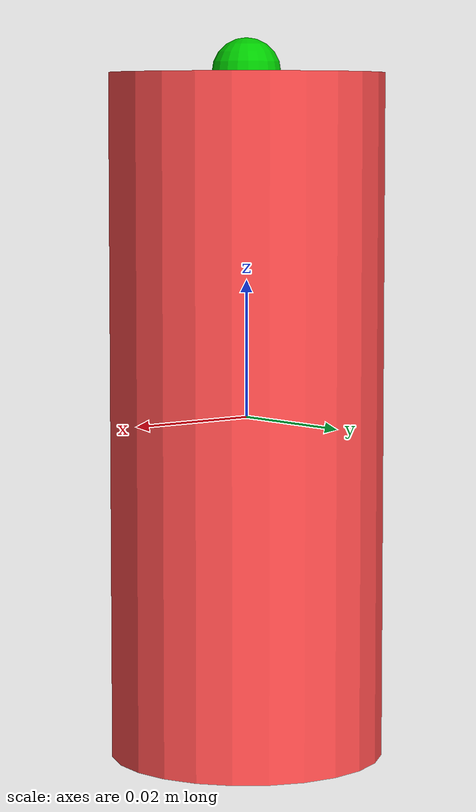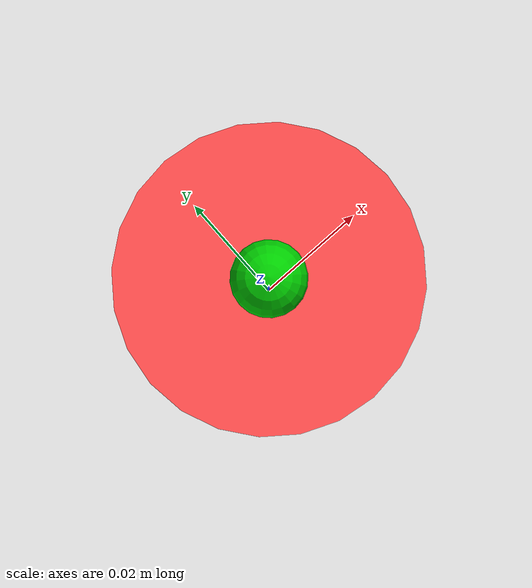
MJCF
<mujoco>
    <compiler angle="radian" inertiafromgeom="auto" inertiagrouprange="4 5"/>
    <asset>
        <texture name="T_asmbly_met" type="cube" file="../textures/metal1.png"/>

        <material name="asmbly_col" rgba="0.3 0.3 1.0 0.5" shininess="0" specular="0"/>
        <material name="asmbly_green" rgba="0 .5 0 1" shininess="1" reflectance=".7" specular=".5"/>

        <material name="asmbly_metal" rgba=".65 .65 .65 1" texture="T_asmbly_met" shininess="1" reflectance=".7" specular=".5"/>

        <mesh file="../objects/meshes/assembly_peg/assembly_peg_handle.stl" name="assembly_peg_handle" scale="1 1 1" />
        <mesh file="../objects/meshes/assembly_peg/assembly_peg_ring.stl" name="assembly_peg_ring" scale="1 1 1" />
        <mesh file="../objects/meshes/assembly_peg/assembly_peg_rod.stl" name="assembly_peg_rod" scale="1 1 1" />

    </asset>

    <default>
        <default class="asmbly_base">
            <joint armature="0.001" damping="2" limited="true"/>
            <geom conaffinity="0" contype="0" group="1" type="mesh"/>
            <position ctrllimited="true" ctrlrange="0 1.57"/>
            <default class="asmbly_viz">
                <geom condim="4" type="mesh"/>
            </default>
            <default class="asmbly_col">
                <geom conaffinity="1" condim="3" contype="1" group="4" material="asmbly_col" solimp="0.99 0.99 0.01" solref="0.01 1"/>
            </default>
        </default>
    </default>

    <worldbody>
        <body name="peg" pos="0 0 0">
          <geom material="asmbly_metal" pos="0 0 0" rgba="1 0.3 0.3 1" size="0.02 0.05" type="cylinder" conaffinity="1" contype="1" group="1" friction="1 0.005 0.0001"/>
          <site name="pegTop" pos="0 0 0.05" size="0.005" rgba="0 0.8 0 1"/>
        </body>
    </worldbody>
</mujoco>
